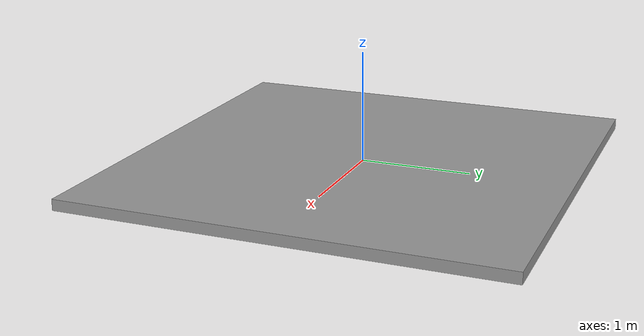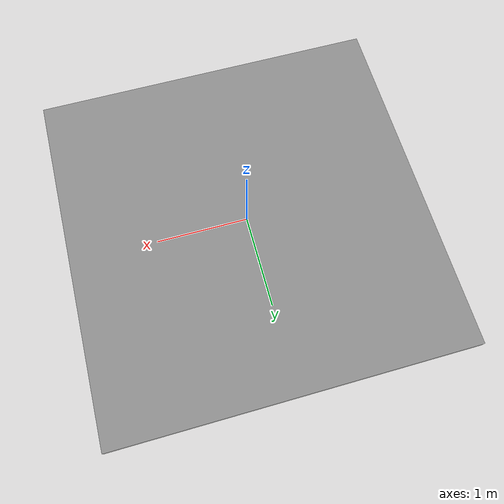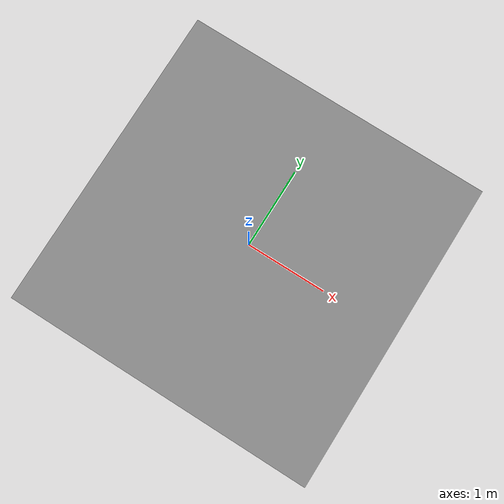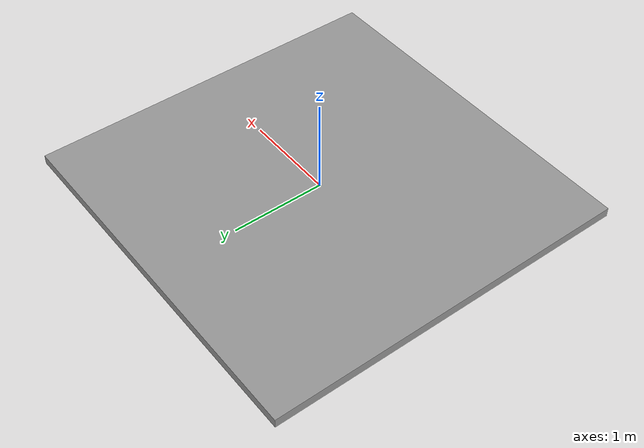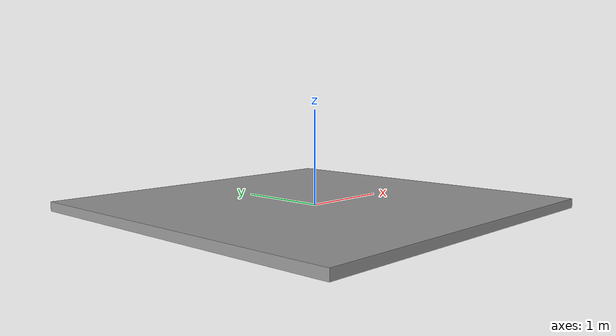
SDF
<?xml version="1.0"?>
<sdf version="1.6">
  <model name="5x5_Apriltag_Plane">
    <static>true</static>
    <link name="Apriltag_plane_link">
      <collision name="plane_collision">
        <geometry>
          <box>
            <size>3.9 3.9 .1</size>
          </box>
        </geometry>
      </collision>
      <visual name="plane_visual">
        <geometry>
          <box>
            <size>3.9 3.9 .1</size>
          </box>
        </geometry>
	<material>
          <script>
            <uri>model://Apriltag_plane/materials/scripts</uri>
            <uri>model://Apriltag_plane/materials/textures</uri>
            <name>RepeatedApriltag</name>
          </script>
	  <ambient>0.5 0.5 0.5 1</ambient>
          <diffuse>0.6 0.6 0.6 1</diffuse>
          <specular>0 0 0 1</specular>
          <emissive>0 0 0 1</emissive>
        </material>
      </visual>
    </link>
  </model>
</sdf>
